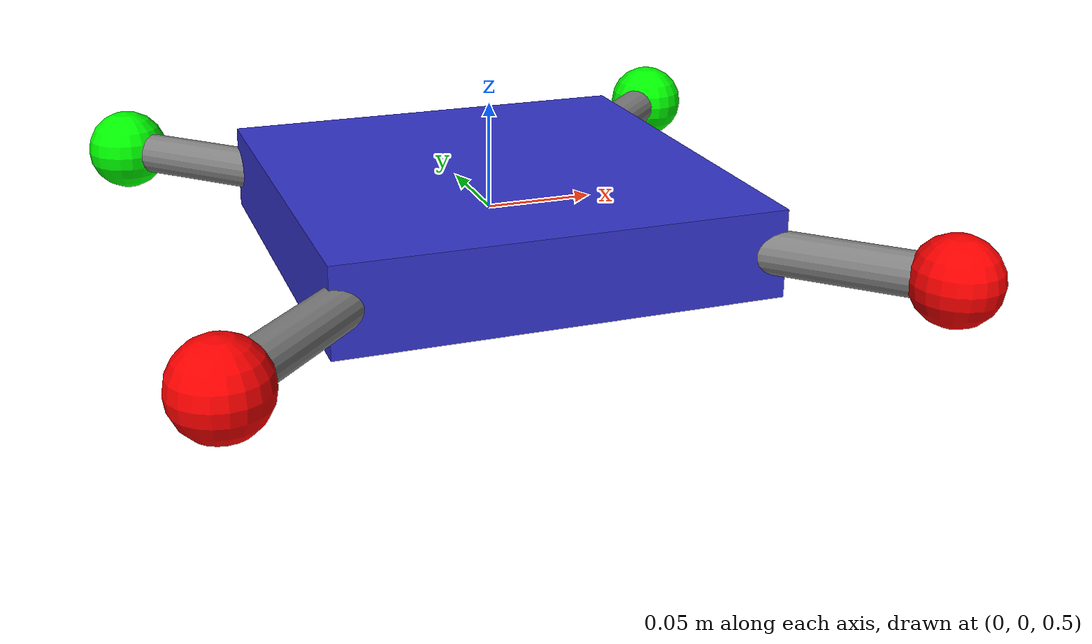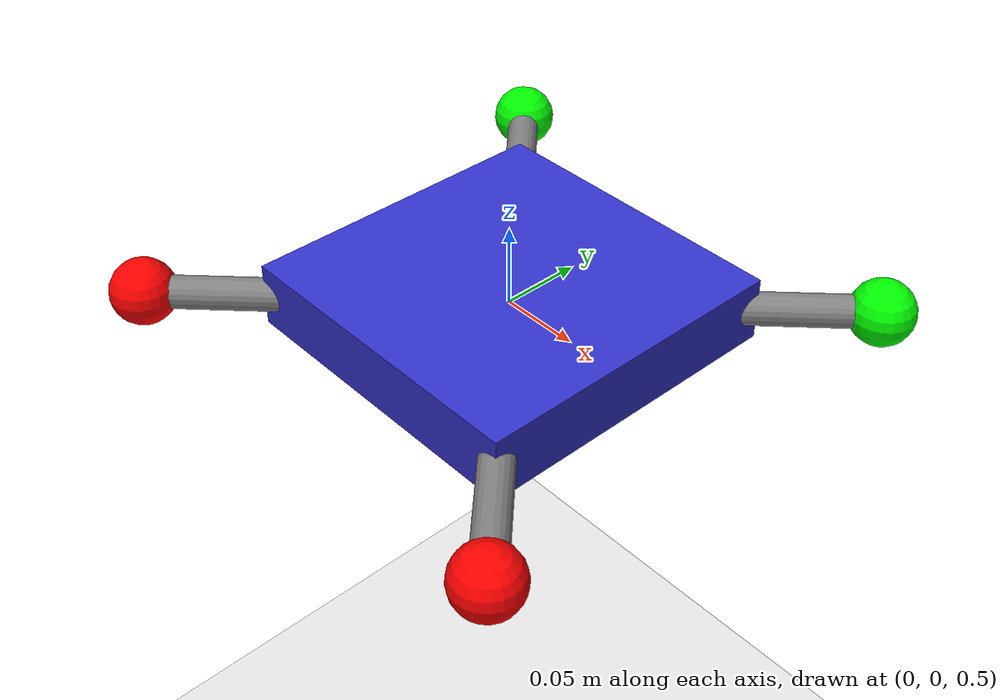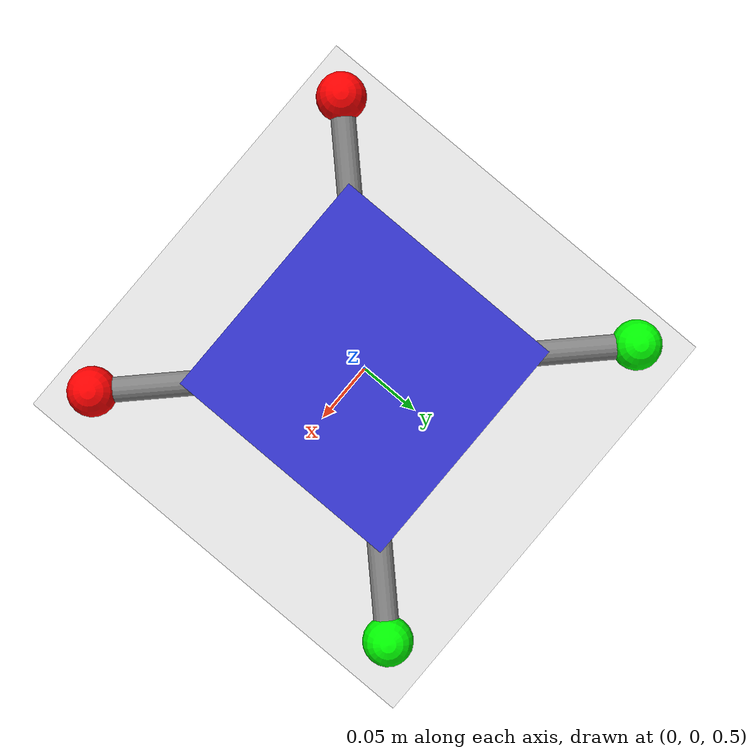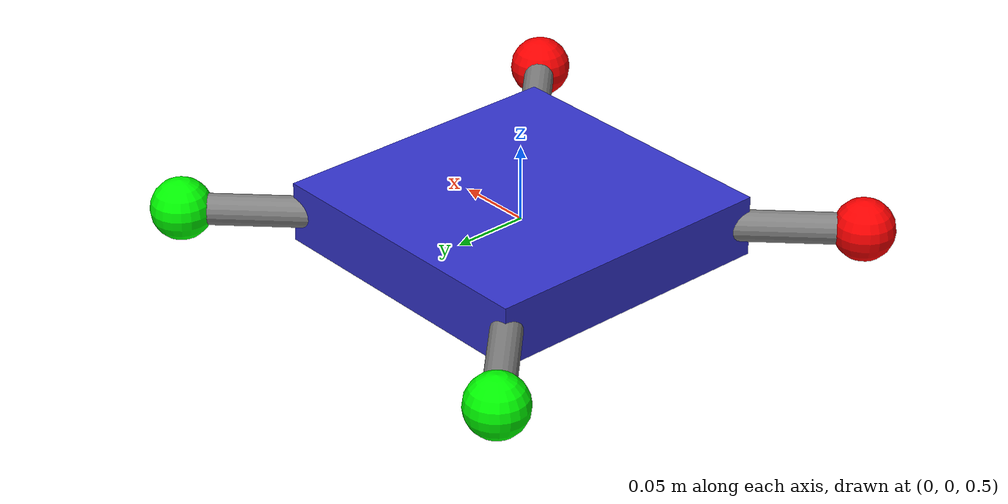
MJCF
<mujoco model="quad">
  <option timestep="0.005" gravity="0 0 -9.81" integrator="RK4"/>

  <worldbody>
    <light diffuse=".6 .6 .6" pos="0 0 3" dir="0 0 -1"/>
    <geom type="plane" size="5 5 0.1" rgba=".9 .9 .9 1"/>

    <body name="drone" pos="0 0 0.5">
      <freejoint name="root"/>
      <inertial pos="0 0 0" mass="0.5" diaginertia="0.0023 0.0023 0.004"/>
      <geom type="box" size="0.1 0.1 0.02" rgba="0.2 0.2 0.8 1" mass="0"/>
      <site name="rotor_fr" pos=" 0.15 -0.15 0" size="0.02" rgba="1 0 0 1"/>
      <site name="rotor_fl" pos=" 0.15  0.15 0" size="0.02" rgba="0 1 0 1"/>
      <site name="rotor_bl" pos="-0.15  0.15 0" size="0.02" rgba="0 1 0 1"/>
      <site name="rotor_br" pos="-0.15 -0.15 0" size="0.02" rgba="1 0 0 1"/>

      <geom type="capsule" fromto="0 0 0  0.15 -0.15 0" size="0.01" mass="0.02"/>
      <geom type="capsule" fromto="0 0 0  0.15  0.15 0" size="0.01" mass="0.02"/>
      <geom type="capsule" fromto="0 0 0 -0.15  0.15 0" size="0.01" mass="0.02"/>
      <geom type="capsule" fromto="0 0 0 -0.15 -0.15 0" size="0.01" mass="0.02"/>
    </body>
  </worldbody>

  <actuator>
    <motor site="rotor_fr" gear="0 0 1 0 0  0.02" ctrlrange="0 5" name="m_fr"/>
    <motor site="rotor_fl" gear="0 0 1 0 0 -0.02" ctrlrange="0 5" name="m_fl"/>
    <motor site="rotor_bl" gear="0 0 1 0 0  0.02" ctrlrange="0 5" name="m_bl"/>
    <motor site="rotor_br" gear="0 0 1 0 0 -0.02" ctrlrange="0 5" name="m_br"/>
  </actuator>
</mujoco>
